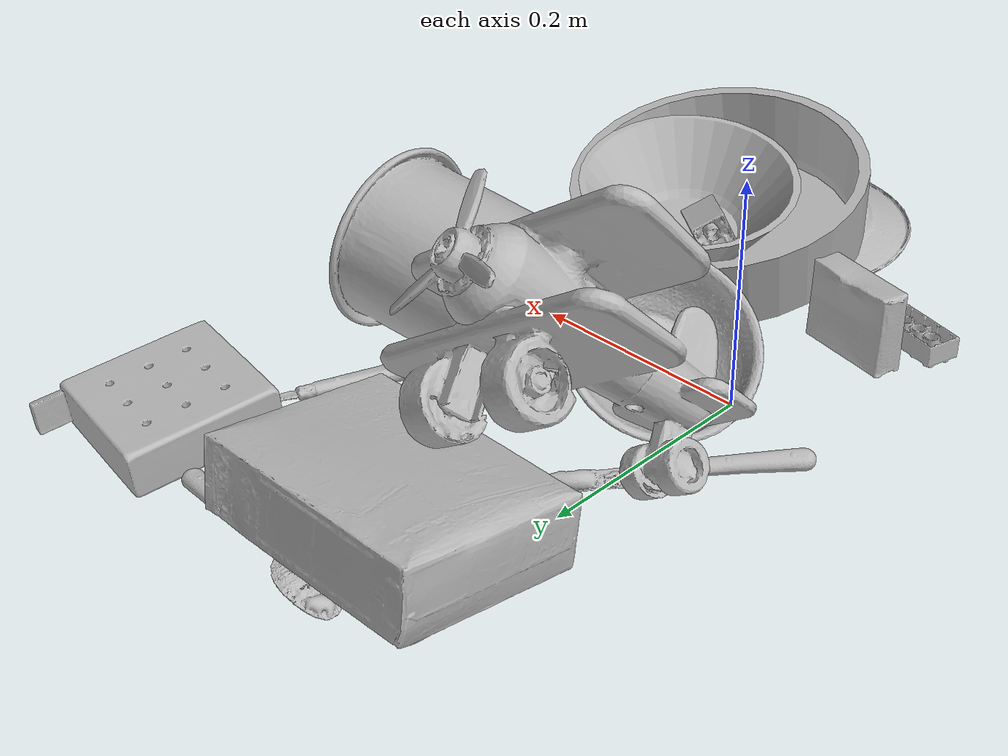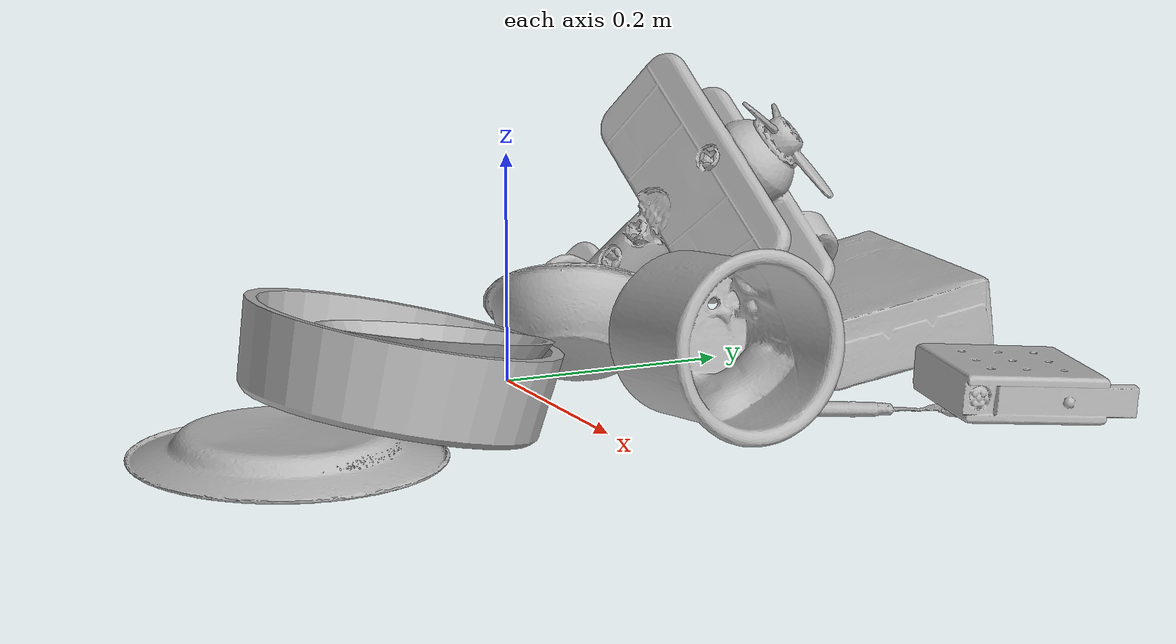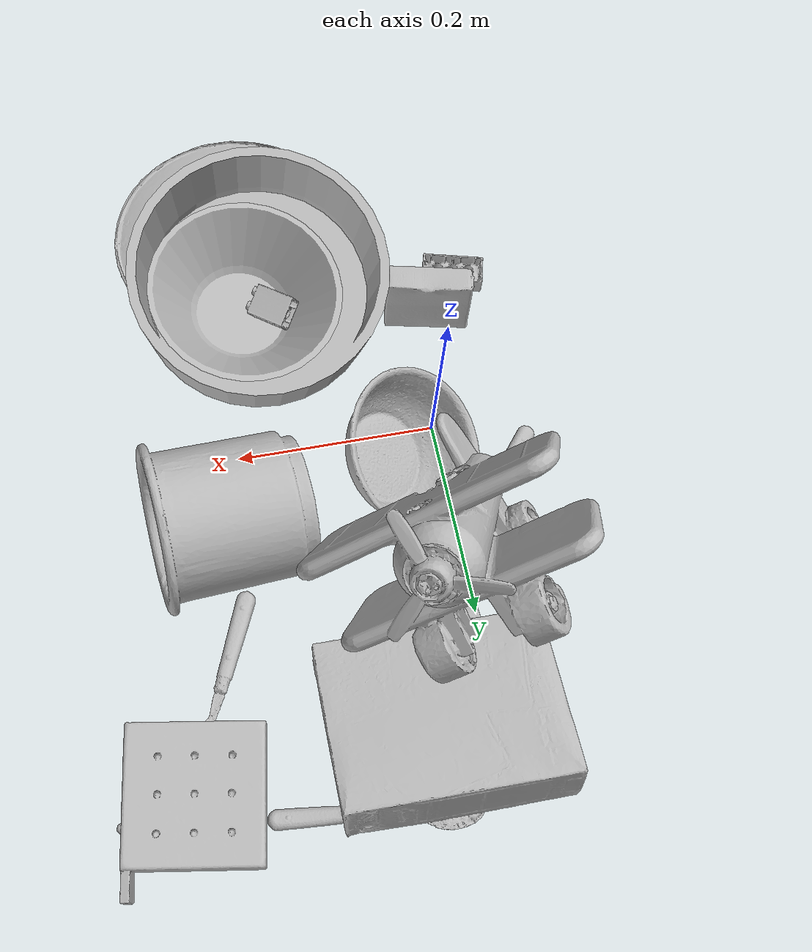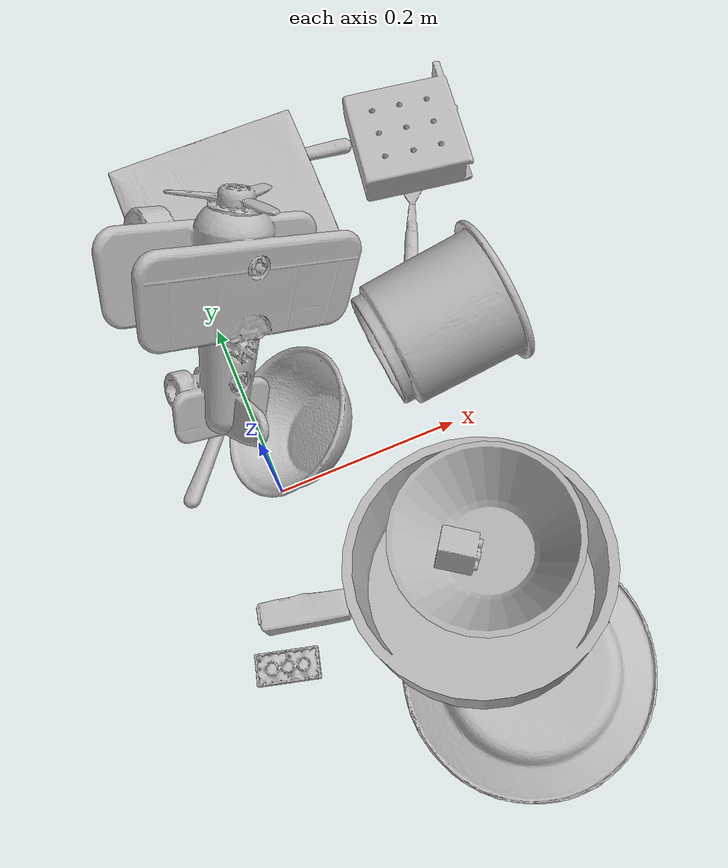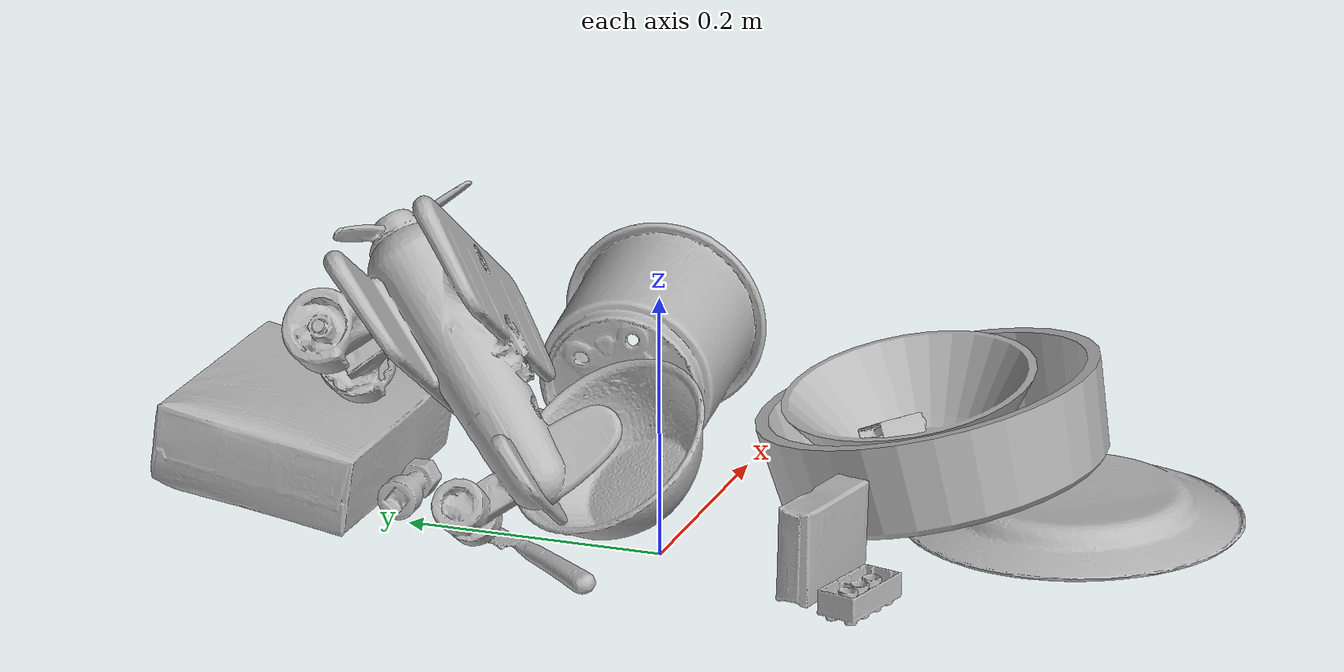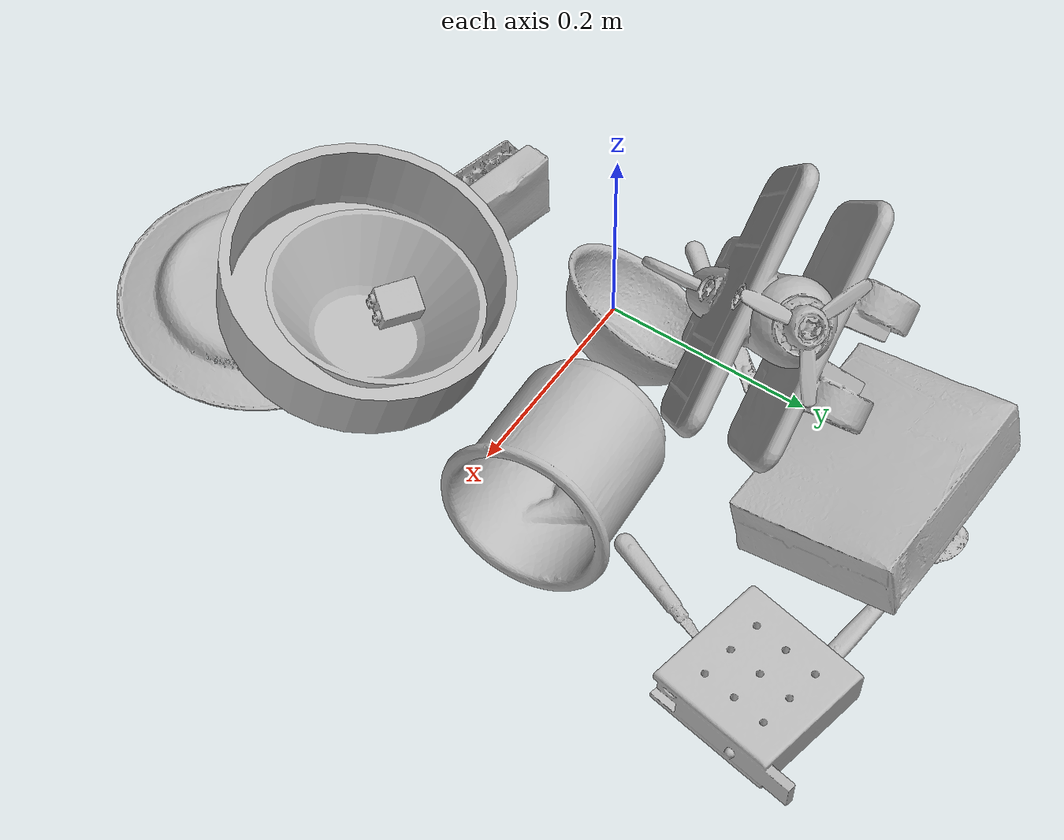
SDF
<sdf version="1.4">
  <world name="default">
    <light name="light1" type="point">
      <pose>0 0 1 0 0 0</pose>
      <diffuse>3 3 3 1</diffuse>
      <specular>3 3 3 1</specular>
    </light>
    <light name="light2" type="point">
      <pose>0 0.5 2 0 0 0</pose>
      <diffuse>1 1 1 1</diffuse>
      <specular>1 1 1 1</specular>
    </light>
    <light name="light3" type="point">
      <pose>0 0.5 2 0 0 0</pose>
      <diffuse>3 3 3 1</diffuse>
      <specular>3 3 3 1</specular>
    </light>
    <scene>
      <ambient>0.7 0.7 0.7</ambient>
    </scene>
    <model name="plate1">
      <link name="link_plate1">
        <collision name="default">
          <geometry>
            <mesh>
              <uri>model://plate/collision_meshes/collision.obj</uri>
              <scale>1.0 1.0 1.0</scale>
            </mesh>
          </geometry>
          <surface>
            <friction>
              <ode>
                <mu>0.5</mu>
                <mu2>0.5</mu2>
              </ode>
            </friction>
          <contact>
        <ode>
            <max_vel>0</max_vel>
            <min_depth>0.0001</min_depth>
            <kp>1e8</kp>
        </ode>
    </contact></surface>
        </collision>
        <visual name="default">
          <geometry>
            <mesh>
              <uri>model://plate/visual_meshes/visual.dae</uri>
              <scale>1.0 1.0 1.0</scale>
            </mesh>
          </geometry>
        </visual>
        <inertial>
          <mass>0.1516857147216797</mass>
          <pose>-0.0006044649053364992 0.00027825761935673654 -0.0010561972158029675 0.002218765199568956 -0.003225488596237322 0.4526153800388047</pose>
          <inertia>
            <ixx>0.00070958876</ixx>
            <iyy>0.0007028018</iyy>
            <izz>0.00138785</izz>
            <ixy>0</ixy>
            <ixz>0</ixz>
            <iyz>0</iyz>
          </inertia>
        </inertial>
      </link>
      <pose>0.16658484935760498 -0.2688697576522827 0.013448596000671387 -3.1413008781316987 -0.0034728908498157045 2.399681368459823</pose>
    </model>
    <model name="plate2">
      <link name="link_plate2">
        <collision name="default">
          <geometry>
            <mesh>
              <uri>model://pan_tefal/collision_meshes/collision.obj</uri>
              <scale>1.0 1.0 1.0</scale>
            </mesh>
          </geometry>
          <surface>
            <friction>
              <ode>
                <mu>0.5</mu>
                <mu2>0.5</mu2>
              </ode>
            </friction>
          <contact>
        <ode>
            <max_vel>0</max_vel>
            <min_depth>0.0001</min_depth>
            <kp>1e8</kp>
        </ode>
    </contact></surface>
        </collision>
        <visual name="default">
          <geometry>
            <mesh>
              <uri>model://pan_tefal/visual_meshes/visual.dae</uri>
              <scale>1.0 1.0 1.0</scale>
            </mesh>
          </geometry>
        </visual>
        <inertial>
          <mass>1.0862284898757935</mass>
          <pose>-0.00018001910939347 3.2794348953757435e-05 -0.00851493515074253 0.0008190334899032376 -0.0003301482999058744 -0.3318501395419688</pose>
          <inertia>
            <ixx>0.0074981838</ixx>
            <iyy>0.007546525</iyy>
            <izz>0.013802713</izz>
            <ixy>0</ixy>
            <ixz>0</ixz>
            <iyz>0</iyz>
          </inertia>
        </inertial>
      </link>
      <pose>0.15098930895328522 -0.1674794703722 0.06205929443240166 -0.2168862609868192 0.06039793968545207 0.3315691453025989</pose>
    </model>
    <model name="bowl1">
      <link name="link_bowl1">
        <collision name="default">
          <geometry>
            <mesh>
              <uri>model://bowl_a/collision_meshes/collision.obj</uri>
              <scale>1.0 1.0 1.0</scale>
            </mesh>
          </geometry>
          <surface>
            <friction>
              <ode>
                <mu>0.5</mu>
                <mu2>0.5</mu2>
              </ode>
            </friction>
          <contact>
        <ode>
            <max_vel>0</max_vel>
            <min_depth>0.0001</min_depth>
            <kp>1e8</kp>
        </ode>
    </contact></surface>
        </collision>
        <visual name="default">
          <geometry>
            <mesh>
              <uri>model://bowl_a/visual_meshes/visual.dae</uri>
              <scale>1.0 1.0 1.0</scale>
            </mesh>
          </geometry>
        </visual>
        <inertial>
          <mass>0.23323877155780792</mass>
          <pose>0.0002786752884276211 4.7312129026977345e-05 -0.001376529224216938 -0.000980538139416196 -0.00109382495954127 -0.19123674059098103</pose>
          <inertia>
            <ixx>0.0006640416</ixx>
            <iyy>0.0006681184</iyy>
            <izz>0.0011810234</izz>
            <ixy>0</ixy>
            <ixz>0</ixz>
            <iyz>0</iyz>
          </inertia>
        </inertial>
      </link>
      <pose>0.17010338604450226 -0.14400939643383026 0.06365140527486801 0.18673203061568777 0.021120897728735977 -2.5915687689944638</pose>
    </model>
    <model name="bowl2">
      <link name="link_bowl2">
        <collision name="default">
          <geometry>
            <mesh>
              <uri>model://bowl/collision_meshes/collision.obj</uri>
              <scale>1.0 1.0 1.0</scale>
            </mesh>
          </geometry>
          <surface>
            <friction>
              <ode>
                <mu>0.5</mu>
                <mu2>0.5</mu2>
              </ode>
            </friction>
          <contact>
        <ode>
            <max_vel>0</max_vel>
            <min_depth>0.0001</min_depth>
            <kp>1e8</kp>
        </ode>
    </contact></surface>
        </collision>
        <visual name="default">
          <geometry>
            <mesh>
              <uri>model://bowl/visual_meshes/visual.dae</uri>
              <scale>1.0 1.0 1.0</scale>
            </mesh>
          </geometry>
        </visual>
        <inertial>
          <mass>0.08787161856889725</mass>
          <pose>0.00020445531117729843 -0.0010302038863301277 -0.0008042651461437345 -0.015764035308279474 0.014546860922519275 0.7140443952173783</pose>
          <inertia>
            <ixx>0.00020184812</ixx>
            <iyy>0.00019733804</iyy>
            <izz>0.00033957793</izz>
            <ixy>0</ixy>
            <ixz>0</ixz>
            <iyz>0</iyz>
          </inertia>
        </inertial>
      </link>
      <pose>0.04378591850399971 0.04444881156086922 0.04946080595254898 -0.43653863511052104 0.516507906038747 1.880993466147761</pose>
    </model>
    <model name="silverware1">
      <link name="link_silverware1">
        <collision name="default">
          <geometry>
            <mesh>
              <uri>model://spoon/collision_meshes/collision.obj</uri>
              <scale>1.0 1.0 1.0</scale>
            </mesh>
          </geometry>
          <surface>
            <friction>
              <ode>
                <mu>0.5</mu>
                <mu2>0.5</mu2>
              </ode>
            </friction>
          <contact>
        <ode>
            <max_vel>0</max_vel>
            <min_depth>0.0001</min_depth>
            <kp>1e8</kp>
        </ode>
    </contact></surface>
        </collision>
        <visual name="default">
          <geometry>
            <mesh>
              <uri>model://spoon/visual_meshes/visual.dae</uri>
              <scale>1.0 1.0 1.0</scale>
            </mesh>
          </geometry>
        </visual>
        <inertial>
          <mass>0.028818774968385696</mass>
          <pose>-0.0055263228714466095 -0.0016034181462600827 -0.0007271657814271748 0.03521556092832266 -0.039065843026344464 0.006150610888934851</pose>
          <inertia>
            <ixx>1.6029475e-06</ixx>
            <iyy>0.0001096545</iyy>
            <izz>0.000110445</izz>
            <ixy>0</ixy>
            <ixz>0</ixz>
            <iyz>0</iyz>
          </inertia>
        </inertial>
      </link>
      <pose>0.12948691844940186 0.3726183772087097 0.010130424983799458 3.088990341316789 -0.06209147285425361 3.0393326096161246</pose>
    </model>
    <model name="box1">
      <link name="link_box1">
        <collision name="default">
          <geometry>
            <mesh>
              <uri>model://cracker_box/collision_meshes/collision.obj</uri>
              <scale>1.0 1.0 1.0</scale>
            </mesh>
          </geometry>
          <surface>
            <friction>
              <ode>
                <mu>0.5</mu>
                <mu2>0.5</mu2>
              </ode>
            </friction>
          <contact>
        <ode>
            <max_vel>0</max_vel>
            <min_depth>0.0001</min_depth>
            <kp>1e8</kp>
        </ode>
    </contact></surface>
        </collision>
        <visual name="default">
          <geometry>
            <mesh>
              <uri>model://cracker_box/visual_meshes/visual.dae</uri>
              <scale>1.0 1.0 1.0</scale>
            </mesh>
          </geometry>
        </visual>
        <inertial>
          <mass>2.9781224727630615</mass>
          <pose>0.0009464174509048462 0.00025434247800149024 -0.0017029534792527556 -0.0003162077703261406 -0.01110649239447325 0.0025467938390949236</pose>
          <inertia>
            <ixx>0.007575013</ixx>
            <iyy>0.012507835</iyy>
            <izz>0.017849829</izz>
            <ixy>0</ixy>
            <ixz>0</ixz>
            <iyz>0</iyz>
          </inertia>
        </inertial>
      </link>
      <pose>0.057435717433691025 0.30756884813308716 0.04307131469249725 2.9792976399513336 -0.013919190439892277 3.14147378699624</pose>
    </model>
    <model name="box2">
      <link name="link_box2">
        <collision name="default">
          <geometry>
            <mesh>
              <uri>model://gelatin_box/collision_meshes/collision.obj</uri>
              <scale>1.0 1.0 1.0</scale>
            </mesh>
          </geometry>
          <surface>
            <friction>
              <ode>
                <mu>0.5</mu>
                <mu2>0.5</mu2>
              </ode>
            </friction>
          <contact>
        <ode>
            <max_vel>0</max_vel>
            <min_depth>0.0001</min_depth>
            <kp>1e8</kp>
        </ode>
    </contact></surface>
        </collision>
        <visual name="default">
          <geometry>
            <mesh>
              <uri>model://gelatin_box/visual_meshes/visual.dae</uri>
              <scale>1.0 1.0 1.0</scale>
            </mesh>
          </geometry>
        </visual>
        <inertial>
          <mass>0.16266882419586182</mass>
          <pose>0.0004319618456065655 0.00011156871914863586 -0.0003640321083366871 -0.0010503720968416132 -0.004755819155016646 0.016440559472150423</pose>
          <inertia>
            <ixx>0.00011483092</ixx>
            <iyy>8.202313e-05</iyy>
            <izz>0.00017479825</izz>
            <ixy>0</ixy>
            <ixz>0</ixz>
            <iyz>0</iyz>
          </inertia>
        </inertial>
      </link>
      <pose>-0.02219841070473194 -0.13254699110984802 0.03643914684653282 0.2141706373474633 -1.541447512323489 -2.001735993781453</pose>
    </model>
    <model name="cup1">
      <link name="link_cup1">
        <collision name="default">
          <geometry>
            <mesh>
              <uri>model://f_cups/collision_meshes/collision.obj</uri>
              <scale>2.0 2.0 2.0</scale>
            </mesh>
          </geometry>
          <surface>
            <friction>
              <ode>
                <mu>0.5</mu>
                <mu2>0.5</mu2>
              </ode>
            </friction>
          <contact>
        <ode>
            <max_vel>0</max_vel>
            <min_depth>0.0001</min_depth>
            <kp>1e8</kp>
        </ode>
    </contact></surface>
        </collision>
        <visual name="default">
          <geometry>
            <mesh>
              <uri>model://f_cups/visual_meshes/visual.dae</uri>
              <scale>2.0 2.0 2.0</scale>
            </mesh>
          </geometry>
        </visual>
        <inertial>
          <mass>0.6683602333068848</mass>
          <pose>-0.006342936307191849 -0.0012480152072384953 -0.0073110745288431644 0.7862253042657107 -0.260793604503958 -0.18237387444081576</pose>
          <inertia>
            <ixx>0.0025131067</ixx>
            <iyy>0.0026362767</iyy>
            <izz>0.0027444381</izz>
            <ixy>0</ixy>
            <ixz>0</ixz>
            <iyz>0</iyz>
          </inertia>
        </inertial>
      </link>
      <pose>0.21864661574363708 0.09065306186676025 0.0749237984418869 -1.372733700915116 -1.0614182676953265 -1.6554215186382846</pose>
    </model>
    <model name="silverware2">
      <link name="link_silverware2">
        <collision name="default">
          <geometry>
            <mesh>
              <uri>model://knife/collision_meshes/collision.obj</uri>
              <scale>1.0 1.0 1.0</scale>
            </mesh>
          </geometry>
          <surface>
            <friction>
              <ode>
                <mu>0.5</mu>
                <mu2>0.5</mu2>
              </ode>
            </friction>
          <contact>
        <ode>
            <max_vel>0</max_vel>
            <min_depth>0.0001</min_depth>
            <kp>1e8</kp>
        </ode>
    </contact></surface>
        </collision>
        <visual name="default">
          <geometry>
            <mesh>
              <uri>model://knife/visual_meshes/visual.dae</uri>
              <scale>1.0 1.0 1.0</scale>
            </mesh>
          </geometry>
        </visual>
        <inertial>
          <mass>0.03087119571864605</mass>
          <pose>-0.023785250261425972 0.0015275123296305537 5.062009586254135e-05 0.07305987484925712 0.017248420899959087 -0.007409824084002247</pose>
          <inertia>
            <ixx>8.762499e-07</ixx>
            <iyy>0.000118602155</iyy>
            <izz>0.00011888435</izz>
            <ixy>0</ixy>
            <ixz>0</ixz>
            <iyz>0</iyz>
          </inertia>
        </inertial>
      </link>
      <pose>-0.02992236241698265 0.10400116443634033 0.005810749251395464 2.889359791752768 0.025914380097069725 0.8883983743798847</pose>
    </model>
    <model name="silverware3">
      <link name="link_silverware3">
        <collision name="default">
          <geometry>
            <mesh>
              <uri>model://fork/collision_meshes/collision.obj</uri>
              <scale>1.0 1.0 1.0</scale>
            </mesh>
          </geometry>
          <surface>
            <friction>
              <ode>
                <mu>0.5</mu>
                <mu2>0.5</mu2>
              </ode>
            </friction>
          <contact>
        <ode>
            <max_vel>0</max_vel>
            <min_depth>0.0001</min_depth>
            <kp>1e8</kp>
        </ode>
    </contact></surface>
        </collision>
        <visual name="default">
          <geometry>
            <mesh>
              <uri>model://fork/visual_meshes/visual.dae</uri>
              <scale>1.0 1.0 1.0</scale>
            </mesh>
          </geometry>
        </visual>
        <inertial>
          <mass>0.015284496359527111</mass>
          <pose>-0.02957003004848957 0.00046588233090005815 0.00032188600744120777 -0.013550803329795006 -0.010977829430356707 0.014453895799763906</pose>
          <inertia>
            <ixx>5.358081e-07</ixx>
            <iyy>3.9903432e-05</iyy>
            <izz>4.0143095e-05</izz>
            <ixy>0</ixy>
            <ixz>0</ixz>
            <iyz>0</iyz>
          </inertia>
        </inertial>
      </link>
      <pose>0.25178882479667664 0.2352423220872879 0.007554491516202688 -3.11643606489064 0.00030314628478694323 1.1533802748834934</pose>
    </model>
    <model name="toy1">
      <link name="link_toy1">
        <collision name="default">
          <geometry>
            <mesh>
              <uri>model://c_toy_airplane/collision_meshes/collision.obj</uri>
              <scale>1.0 1.0 1.0</scale>
            </mesh>
          </geometry>
          <surface>
            <friction>
              <ode>
                <mu>0.5</mu>
                <mu2>0.5</mu2>
              </ode>
            </friction>
          <contact>
        <ode>
            <max_vel>0</max_vel>
            <min_depth>0.0001</min_depth>
            <kp>1e8</kp>
        </ode>
    </contact></surface>
        </collision>
        <visual name="default">
          <geometry>
            <mesh>
              <uri>model://c_toy_airplane/visual_meshes/visual.dae</uri>
              <scale>1.0 1.0 1.0</scale>
            </mesh>
          </geometry>
        </visual>
        <inertial>
          <mass>0.014899278059601784</mass>
          <pose>-0.0002302424400113523 -4.428088118402229e-07 -0.006080529186874628 -0.00619304524108313 -0.016797611161866028 0.7655100812139064</pose>
          <inertia>
            <ixx>6.841441e-06</ixx>
            <iyy>6.822133e-06</iyy>
            <izz>1.6062353e-06</izz>
            <ixy>0</ixy>
            <ixz>0</ixz>
            <iyz>0</iyz>
          </inertia>
        </inertial>
      </link>
      <pose>0.0343279205262661 0.21227239072322845 0.01421592477709055 -1.7880795386230792 1.3247654237387818 -1.7206584860668839</pose>
    </model>
    <model name="toy2">
      <link name="link_toy2">
        <collision name="default">
          <geometry>
            <mesh>
              <uri>model://nine_hole_peg_test/collision_meshes/collision.obj</uri>
              <scale>1.0 1.0 1.0</scale>
            </mesh>
          </geometry>
          <surface>
            <friction>
              <ode>
                <mu>0.5</mu>
                <mu2>0.5</mu2>
              </ode>
            </friction>
          <contact>
        <ode>
            <max_vel>0</max_vel>
            <min_depth>0.0001</min_depth>
            <kp>1e8</kp>
        </ode>
    </contact></surface>
        </collision>
        <visual name="default">
          <geometry>
            <mesh>
              <uri>model://nine_hole_peg_test/visual_meshes/visual.dae</uri>
              <scale>1.0 1.0 1.0</scale>
            </mesh>
          </geometry>
        </visual>
        <inertial>
          <mass>0.8674170970916748</mass>
          <pose>-0.004617386031895876 -0.009647614322602749 2.6460689696250483e-05 -0.0014666783129250742 0.0007194188660534222 -0.6342410037611789</pose>
          <inertia>
            <ixx>0.0013563493</ixx>
            <iyy>0.0012664091</iyy>
            <izz>0.0023767245</izz>
            <ixy>0</ixy>
            <ixz>0</ixz>
            <iyz>0</iyz>
          </inertia>
        </inertial>
      </link>
      <pose>0.2935135066509247 0.3408704102039337 0.025011712685227394 -0.08987473863014574 -0.00274399448115874 -0.15349294687074058</pose>
    </model>
    <model name="toy3">
      <link name="link_toy3">
        <collision name="default">
          <geometry>
            <mesh>
              <uri>model://a_toy_airplane/collision_meshes/collision.obj</uri>
              <scale>1.0 1.0 1.0</scale>
            </mesh>
          </geometry>
          <surface>
            <friction>
              <ode>
                <mu>0.5</mu>
                <mu2>0.5</mu2>
              </ode>
            </friction>
          <contact>
        <ode>
            <max_vel>0</max_vel>
            <min_depth>0.0001</min_depth>
            <kp>1e8</kp>
        </ode>
    </contact></surface>
        </collision>
        <visual name="default">
          <geometry>
            <mesh>
              <uri>model://a_toy_airplane/visual_meshes/visual.dae</uri>
              <scale>1.0 1.0 1.0</scale>
            </mesh>
          </geometry>
        </visual>
        <inertial>
          <mass>1.0043106079101562</mass>
          <pose>0.02516508847475052 -0.003707321360707283 -0.0011962434509769082 -0.01201694293172648 -0.14663499629613377 0.0041490900747424425</pose>
          <inertia>
            <ixx>0.0036471337</ixx>
            <iyy>0.0053146123</iyy>
            <izz>0.0062227584</izz>
            <ixy>0</ixy>
            <ixz>0</ixz>
            <iyz>0</iyz>
          </inertia>
        </inertial>
      </link>
      <pose>0.012834616005420685 0.15648843348026276 0.12693028151988983 0.7134550205974217 -0.583627420908051 1.1753849008548356</pose>
    </model>
    <model name="toy4">
      <link name="link_toy4">
        <collision name="default">
          <geometry>
            <mesh>
              <uri>model://c_lego_duplo/collision_meshes/collision.obj</uri>
              <scale>1.0 1.0 1.0</scale>
            </mesh>
          </geometry>
          <surface>
            <friction>
              <ode>
                <mu>0.5</mu>
                <mu2>0.5</mu2>
              </ode>
            </friction>
          <contact>
        <ode>
            <max_vel>0</max_vel>
            <min_depth>0.0001</min_depth>
            <kp>1e8</kp>
        </ode>
    </contact></surface>
        </collision>
        <visual name="default">
          <geometry>
            <mesh>
              <uri>model://c_lego_duplo/visual_meshes/visual.dae</uri>
              <scale>1.0 1.0 1.0</scale>
            </mesh>
          </geometry>
        </visual>
        <inertial>
          <mass>0.019874408841133118</mass>
          <pose>0.0003164595691487193 0.0001946465636137873 0.0010453156428411603 -0.01152079101413275 0.005900072799474436 0.031100350485514378</pose>
          <inertia>
            <ixx>7.648045e-06</ixx>
            <iyy>2.443061e-06</iyy>
            <izz>8.937529e-06</izz>
            <ixy>0</ixy>
            <ixz>0</ixz>
            <iyz>0</iyz>
          </inertia>
        </inertial>
      </link>
      <pose>-0.05893782153725624 -0.17376834154129028 0.011916548013687134 -3.135131865060019 -0.0004728335190872693 1.3366615440315666</pose>
    </model>
    <model name="toy5">
      <link name="link_toy5">
        <collision name="default">
          <geometry>
            <mesh>
              <uri>model://b_lego_duplo/collision_meshes/collision.obj</uri>
              <scale>1.0 1.0 1.0</scale>
            </mesh>
          </geometry>
          <surface>
            <friction>
              <ode>
                <mu>0.5</mu>
                <mu2>0.5</mu2>
              </ode>
            </friction>
          <contact>
        <ode>
            <max_vel>0</max_vel>
            <min_depth>0.0001</min_depth>
            <kp>1e8</kp>
        </ode>
    </contact></surface>
        </collision>
        <visual name="default">
          <geometry>
            <mesh>
              <uri>model://b_lego_duplo/visual_meshes/visual.dae</uri>
              <scale>1.0 1.0 1.0</scale>
            </mesh>
          </geometry>
        </visual>
        <inertial>
          <mass>0.031542204320430756</mass>
          <pose>-0.0001105302435462363 -9.152341590379365e-06 0.001929428894072771 -0.03749493031375769 -0.026354084635952003 0.4518990108557965</pose>
          <inertia>
            <ixx>6.4553496e-06</ixx>
            <iyy>6.4987444e-06</iyy>
            <izz>5.7515063e-06</izz>
            <ixy>0</ixy>
            <ixz>0</ixz>
            <iyz>0</iyz>
          </inertia>
        </inertial>
      </link>
      <pose>0.14228717982769012 -0.13846547901630402 0.05702688917517662 1.5633654664177417 0.46052297201480114 0.9566376353706275</pose>
    </model>
  <physics type="ode">
      <max_contacts>50</max_contacts>
      <ode>
        <solver>
          <type>quick</type>
          <iters>75</iters>
        </solver>
        <constraints>
          <contact_max_correcting_vel>0</contact_max_correcting_vel>
          <contact_surface_layer>0</contact_surface_layer>
        </constraints>
      </ode>
    </physics></world>
</sdf>
